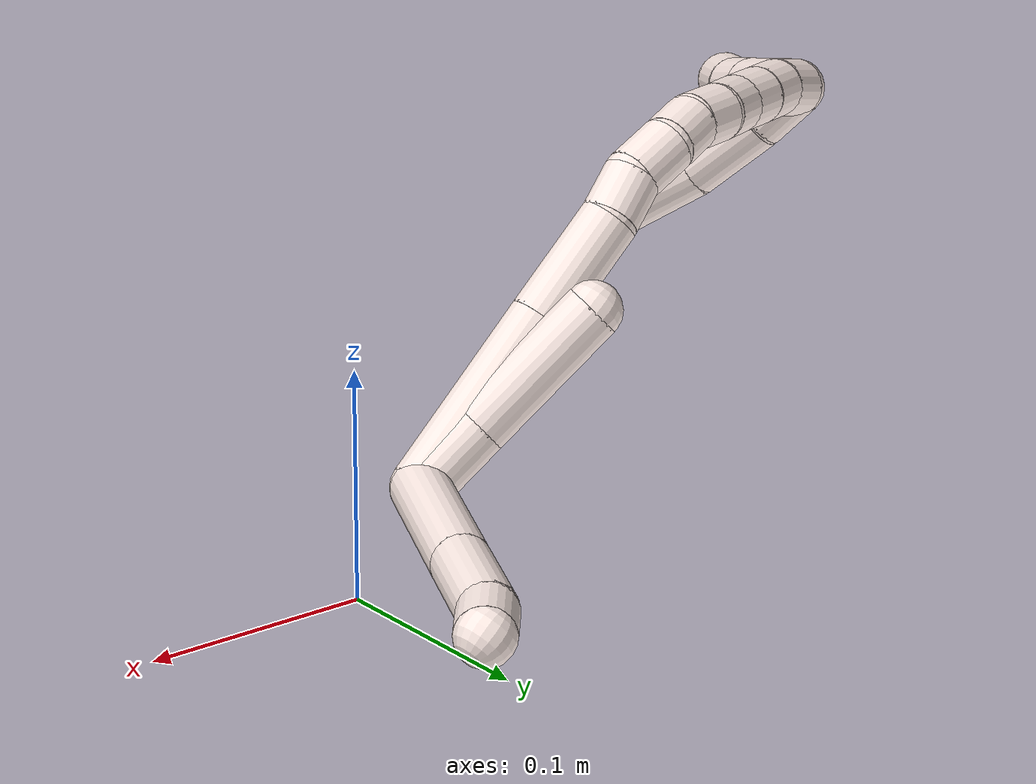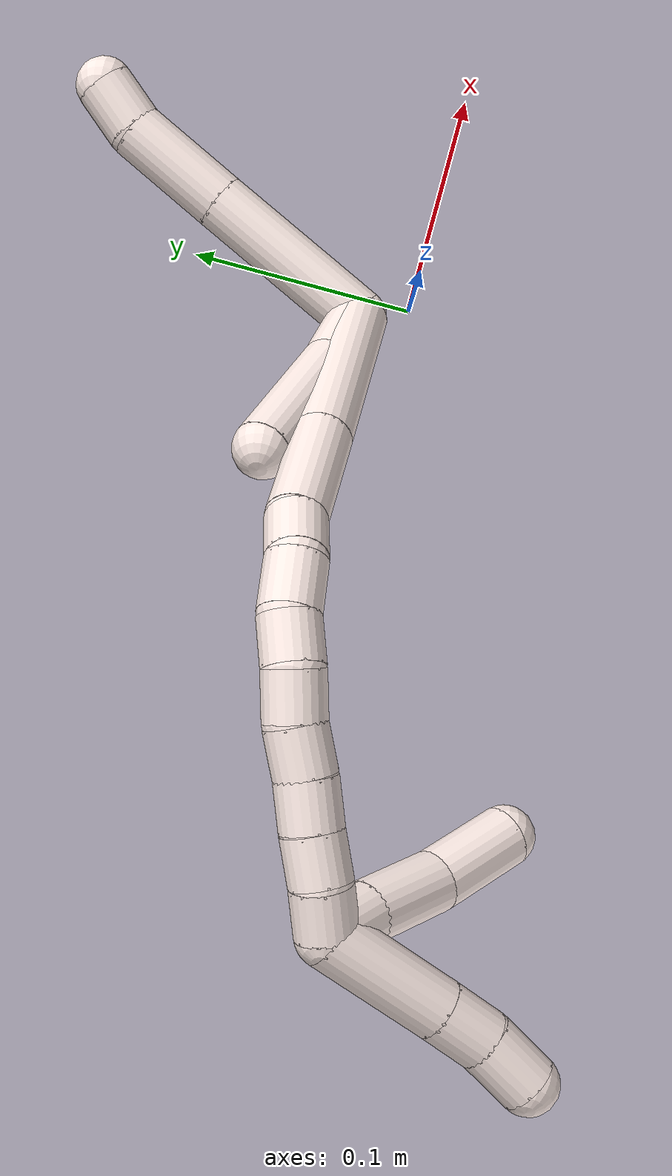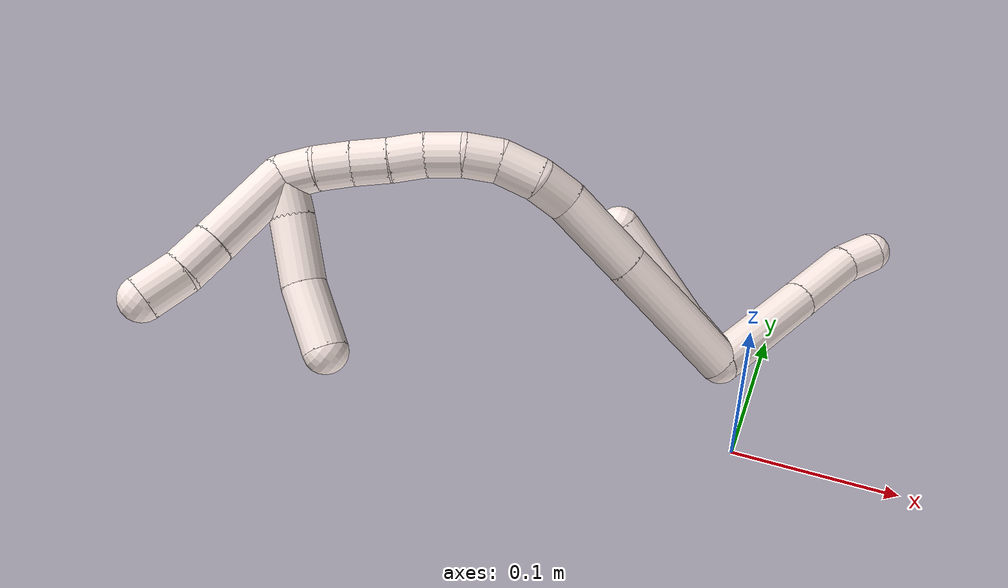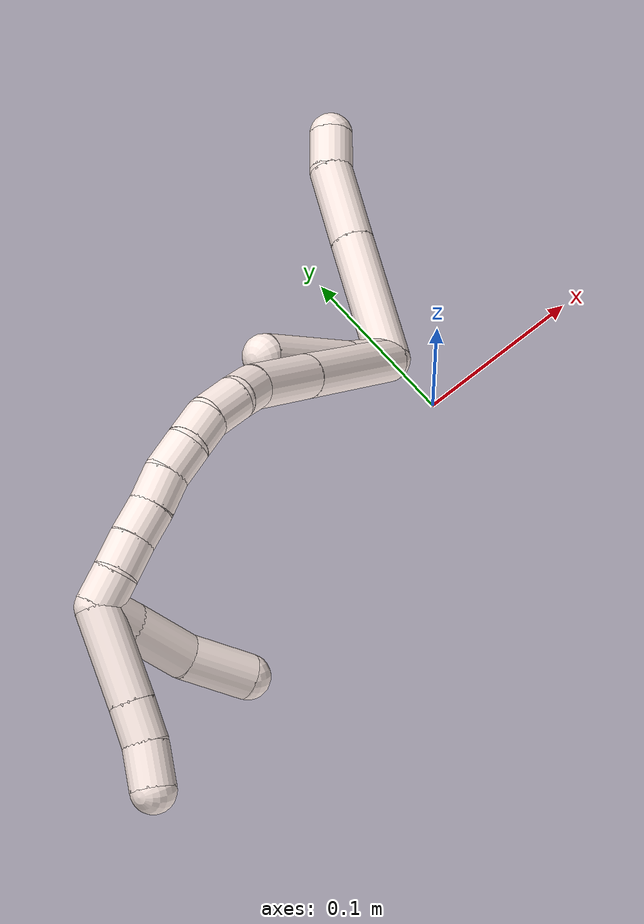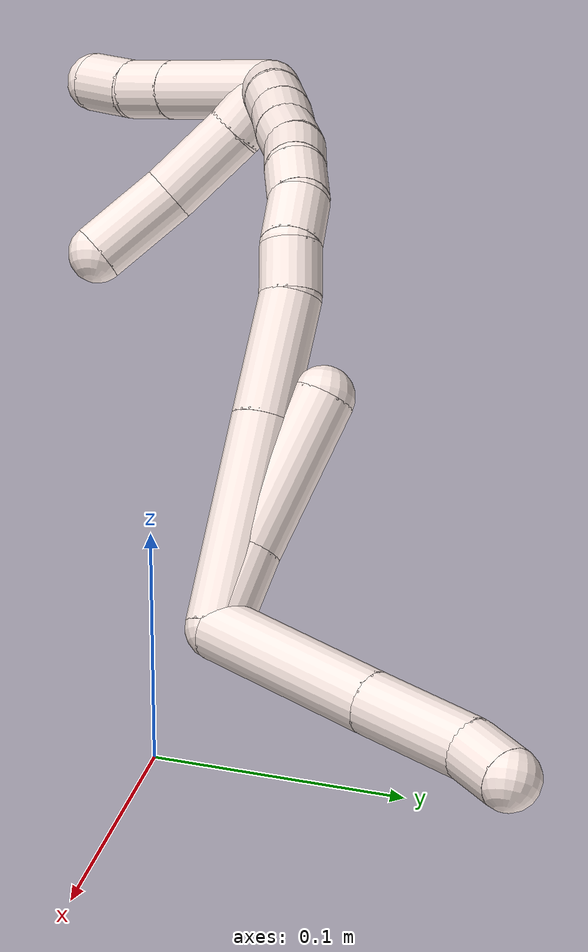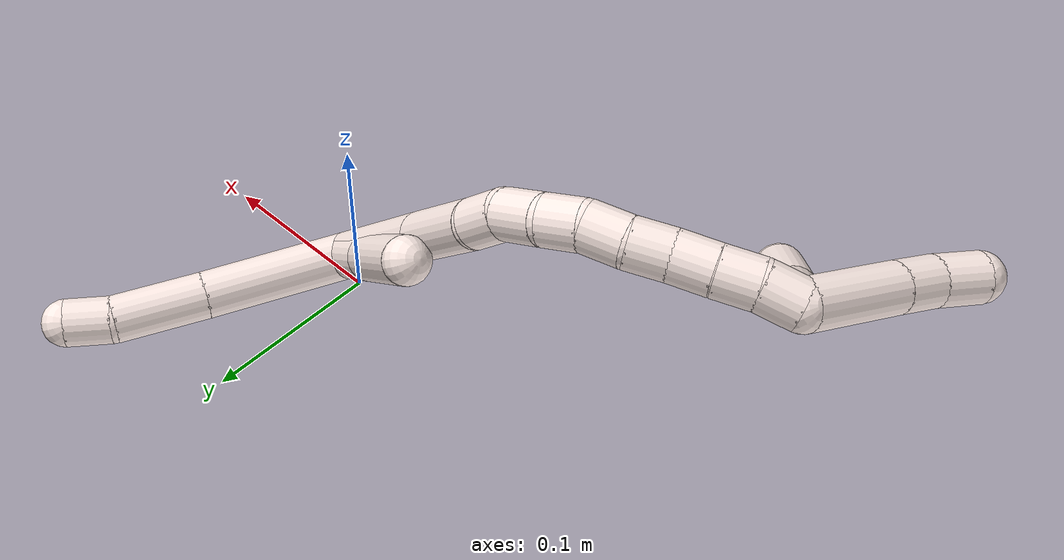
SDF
<sdf version="1.7">
 <world name="default">
  <model name="photoneo_s_sensor">
   <static>1</static>
   <pose>0 0 2 1.57079 1.57079 3.14159</pose>
   <link name="link">
    <inertial><mass>0.1</mass></inertial>
    <sensor name="sensor" type="depth">
     <update_rate>30</update_rate>
     <camera>
      <horizontal_fov>1.22</horizontal_fov>
      <image><width>1920</width><height>1200</height><format>B8G8R8</format></image>
      <clip><near>0.1</near><far>4</far></clip>
      <depth_camera><output>points</output></depth_camera>
     </camera>
     <plugin name="camera_plugin" filename="libgazebo_ros_depth_camera.so">
      <baseline>0.2</baseline>
      <alwaysOn>1</alwaysOn>
      <updateRate>0.0</updateRate>
      <cameraName>camera_ir</cameraName>
      <imageTopicName>/camera/color/image_raw</imageTopicName>
      <cameraInfoTopicName>/camera/color/camera_info</cameraInfoTopicName>
      <depthImageTopicName>/camera/depth/image_raw</depthImageTopicName>
      <depthImageCameraInfoTopicName>/camera/depth/camera_info</depthImageCameraInfoTopicName>
      <pointCloudTopicName>/camera/depth/points</pointCloudTopicName>
      <frameName>fr_optical</frameName>
      <pointCloudCutoff>0.1</pointCloudCutoff>
      <pointCloudCutoffMax>2.0</pointCloudCutoffMax>
      <distortionK1>0</distortionK1>
      <distortionK2>0</distortionK2>
      <distortionK3>0</distortionK3>
      <distortionT1>0</distortionT1>
      <distortionT2>0</distortionT2>
      <CxPrime>0</CxPrime>
      <Cx>0</Cx>
      <Cy>0</Cy>
      <focalLength>0</focalLength>
      <hackBaseline>0</hackBaseline>
     </plugin>
    </sensor>
   </link>
  </model>
  <model name="bin">
   <static>1</static>
   <link name="bottom">
    <collision name="collision-bottom">
     <pose>0 0 -0.01 0 -0 0</pose>
     <geometry><box><size>0.8 0.6 0.02</size></box></geometry>
     <surface>
      <friction><ode><mu>100</mu><mu2>100</mu2></ode></friction>
      <contact><collide_bitmask>65535</collide_bitmask></contact>
     </surface>
    </collision>
   </link>
   <link name="west_wall">
    <collision name="collision-west_wall">
     <pose>-0.41 0 0.1 0 -0 0</pose>
     <geometry><box><size>0.02 0.6 0.2</size></box></geometry>
     <surface>
      <friction><ode><mu>100</mu><mu2>100</mu2></ode></friction>
      <contact><collide_bitmask>65535</collide_bitmask></contact>
     </surface>
    </collision>
   </link>
   <link name="east_wall">
    <collision name="collision-east_wall">
     <pose>0.41 0 0.1 0 -0 0</pose>
     <geometry><box><size>0.02 0.6 0.2</size></box></geometry>
     <surface>
      <friction><ode><mu>100</mu><mu2>100</mu2></ode></friction>
      <contact><collide_bitmask>65535</collide_bitmask></contact>
     </surface>
    </collision>
   </link>
   <link name="south_wall">
    <collision name="collision-south_wall">
     <pose>0 -0.31 0.1 0 -0 0</pose>
     <geometry><box><size>0.8 0.02 0.2</size></box></geometry>
     <surface>
      <friction><ode><mu>100</mu><mu2>100</mu2></ode></friction>
      <contact><collide_bitmask>65535</collide_bitmask></contact>
     </surface>
    </collision>
   </link>
   <link name="north_wall">
    <collision name="collision-north_wall">
     <pose>0 0.31 0.1 0 -0 0</pose>
     <geometry><box><size>0.8 0.02 0.2</size></box></geometry>
     <surface>
      <friction><ode><mu>100</mu><mu2>100</mu2></ode></friction>
      <contact><collide_bitmask>65535</collide_bitmask></contact>
     </surface>
    </collision>
   </link>
  </model>
  <model name="11">
   <static>0</static>
   <link name="11">
    <collision name="collision-cylinder-e_1_2_8">
     <pose>0.022334 0.028121 -0.015086 -2.06319 0.610638 -0.969623</pose>
     <geometry><cylinder><radius>0.0125</radius><length>0.077901</length></cylinder></geometry>
     <surface>
      <friction><ode><mu>1.16</mu><mu2>1.16</mu2><slip1>0</slip1><slip2>0</slip2></ode></friction>
      <contact><ode><kp>1e+06</kp><kd>1</kd><max_vel>0</max_vel><min_depth>0.001</min_depth></ode></contact>
     </surface>
    </collision>
    <visual name="visual-cylinder-e_1_2_8">
     <pose>0.022334 0.028121 -0.015086 -2.06319 0.610638 -0.969623</pose>
     <geometry><cylinder><radius>0.0125</radius><length>0.077901</length></cylinder></geometry>
     <material><ambient>1 0.933333 0.909804 1</ambient></material>
    </visual>
    <collision name="collision-cylinder-e_2_8_9">
     <pose>0.058854 0.073478 -0.039305 -2.05807 0.628783 -0.990753</pose>
     <geometry><cylinder><radius>0.0125</radius><length>0.04824</length></cylinder></geometry>
     <surface>
      <friction><ode><mu>1.16</mu><mu2>1.16</mu2><slip1>0</slip1><slip2>0</slip2></ode></friction>
      <contact><ode><kp>1e+06</kp><kd>1</kd><max_vel>0</max_vel><min_depth>0.001</min_depth></ode></contact>
     </surface>
    </collision>
    <visual name="visual-cylinder-e_2_8_9">
     <pose>0.058854 0.073478 -0.039305 -2.05807 0.628783 -0.990753</pose>
     <geometry><cylinder><radius>0.0125</radius><length>0.04824</length></cylinder></geometry>
     <material><ambient>1 0.933333 0.909804 1</ambient></material>
    </visual>
    <collision name="collision-cylinder-e_3_9_6">
     <pose>0.080961 0.096966 -0.054802 -2.36506 0.726081 -1.49693</pose>
     <geometry><cylinder><radius>0.0125</radius><length>0.023859</length></cylinder></geometry>
     <surface>
      <friction><ode><mu>1.16</mu><mu2>1.16</mu2><slip1>0</slip1><slip2>0</slip2></ode></friction>
      <contact><ode><kp>1e+06</kp><kd>1</kd><max_vel>0</max_vel><min_depth>0.001</min_depth></ode></contact>
     </surface>
    </collision>
    <visual name="visual-cylinder-e_3_9_6">
     <pose>0.080961 0.096966 -0.054802 -2.36506 0.726081 -1.49693</pose>
     <geometry><cylinder><radius>0.0125</radius><length>0.023859</length></cylinder></geometry>
     <material><ambient>1 0.933333 0.909804 1</ambient></material>
    </visual>
    <collision name="collision-cylinder-e_1_2_10">
     <pose>0.001605 0.00327 0.016574 -0.194822 0.094744 -0.009265</pose>
     <geometry><cylinder><radius>0.0125</radius><length>0.033939</length></cylinder></geometry>
     <surface>
      <friction><ode><mu>1.16</mu><mu2>1.16</mu2><slip1>0</slip1><slip2>0</slip2></ode></friction>
      <contact><ode><kp>1e+06</kp><kd>1</kd><max_vel>0</max_vel><min_depth>0.001</min_depth></ode></contact>
     </surface>
    </collision>
    <visual name="visual-cylinder-e_1_2_10">
     <pose>0.001605 0.00327 0.016574 -0.194822 0.094744 -0.009265</pose>
     <geometry><cylinder><radius>0.0125</radius><length>0.033939</length></cylinder></geometry>
     <material><ambient>1 0.933333 0.909804 1</ambient></material>
    </visual>
    <collision name="collision-cylinder-e_2_10_5">
     <pose>0.009523 0.014642 0.064541 -0.252544 0.1923 -0.024486</pose>
     <geometry><cylinder><radius>0.0125</radius><length>0.066061</length></cylinder></geometry>
     <surface>
      <friction><ode><mu>1.16</mu><mu2>1.16</mu2><slip1>0</slip1><slip2>0</slip2></ode></friction>
      <contact><ode><kp>1e+06</kp><kd>1</kd><max_vel>0</max_vel><min_depth>0.001</min_depth></ode></contact>
     </surface>
    </collision>
    <visual name="visual-cylinder-e_2_10_5">
     <pose>0.009523 0.014642 0.064541 -0.252544 0.1923 -0.024486</pose>
     <geometry><cylinder><radius>0.0125</radius><length>0.066061</length></cylinder></geometry>
     <material><ambient>1 0.933333 0.909804 1</ambient></material>
    </visual>
    <collision name="collision-cylinder-e_1_2_11">
     <pose>0.004452 0.000968 0.041895 -0.023101 0.105845 -0.001224</pose>
     <geometry><cylinder><radius>0.0125</radius><length>0.084284</length></cylinder></geometry>
     <surface>
      <friction><ode><mu>1.16</mu><mu2>1.16</mu2><slip1>0</slip1><slip2>0</slip2></ode></friction>
      <contact><ode><kp>1e+06</kp><kd>1</kd><max_vel>0</max_vel><min_depth>0.001</min_depth></ode></contact>
     </surface>
    </collision>
    <visual name="visual-cylinder-e_1_2_11">
     <pose>0.004452 0.000968 0.041895 -0.023101 0.105845 -0.001224</pose>
     <geometry><cylinder><radius>0.0125</radius><length>0.084284</length></cylinder></geometry>
     <material><ambient>1 0.933333 0.909804 1</ambient></material>
    </visual>
    <collision name="collision-cylinder-e_2_11_12">
     <pose>0.011504 0.002657 0.108991 -0.028604 0.102739 -0.001471</pose>
     <geometry><cylinder><radius>0.0125</radius><length>0.05069</length></cylinder></geometry>
     <surface>
      <friction><ode><mu>1.16</mu><mu2>1.16</mu2><slip1>0</slip1><slip2>0</slip2></ode></friction>
      <contact><ode><kp>1e+06</kp><kd>1</kd><max_vel>0</max_vel><min_depth>0.001</min_depth></ode></contact>
     </surface>
    </collision>
    <visual name="visual-cylinder-e_2_11_12">
     <pose>0.011504 0.002657 0.108991 -0.028604 0.102739 -0.001471</pose>
     <geometry><cylinder><radius>0.0125</radius><length>0.05069</length></cylinder></geometry>
     <material><ambient>1 0.933333 0.909804 1</ambient></material>
    </visual>
    <collision name="collision-cylinder-e_3_12_13">
     <pose>0.014041 0.001672 0.144744 0.16026 -0.005791 -0.000465</pose>
     <geometry><cylinder><radius>0.0125</radius><length>0.021379</length></cylinder></geometry>
     <surface>
      <friction><ode><mu>1.16</mu><mu2>1.16</mu2><slip1>0</slip1><slip2>0</slip2></ode></friction>
      <contact><ode><kp>1e+06</kp><kd>1</kd><max_vel>0</max_vel><min_depth>0.001</min_depth></ode></contact>
     </surface>
    </collision>
    <visual name="visual-cylinder-e_3_12_13">
     <pose>0.014041 0.001672 0.144744 0.16026 -0.005791 -0.000465</pose>
     <geometry><cylinder><radius>0.0125</radius><length>0.021379</length></cylinder></geometry>
     <material><ambient>1 0.933333 0.909804 1</ambient></material>
    </visual>
    <collision name="collision-cylinder-e_4_13_14">
     <pose>0.010747 0.000399 0.166393 -0.03891 -0.28325 0.005548</pose>
     <geometry><cylinder><radius>0.0125</radius><length>0.02313</length></cylinder></geometry>
     <surface>
      <friction><ode><mu>1.16</mu><mu2>1.16</mu2><slip1>0</slip1><slip2>0</slip2></ode></friction>
      <contact><ode><kp>1e+06</kp><kd>1</kd><max_vel>0</max_vel><min_depth>0.001</min_depth></ode></contact>
     </surface>
    </collision>
    <visual name="visual-cylinder-e_4_13_14">
     <pose>0.010747 0.000399 0.166393 -0.03891 -0.28325 0.005548</pose>
     <geometry><cylinder><radius>0.0125</radius><length>0.02313</length></cylinder></geometry>
     <material><ambient>1 0.933333 0.909804 1</ambient></material>
    </visual>
    <collision name="collision-cylinder-e_5_14_15">
     <pose>0.002607 -0.000319 0.186152 0.131861 -0.511683 -0.034538</pose>
     <geometry><cylinder><radius>0.0125</radius><length>0.020045</length></cylinder></geometry>
     <surface>
      <friction><ode><mu>1.16</mu><mu2>1.16</mu2><slip1>0</slip1><slip2>0</slip2></ode></friction>
      <contact><ode><kp>1e+06</kp><kd>1</kd><max_vel>0</max_vel><min_depth>0.001</min_depth></ode></contact>
     </surface>
    </collision>
    <visual name="visual-cylinder-e_5_14_15">
     <pose>0.002607 -0.000319 0.186152 0.131861 -0.511683 -0.034538</pose>
     <geometry><cylinder><radius>0.0125</radius><length>0.020045</length></cylinder></geometry>
     <material><ambient>1 0.933333 0.909804 1</ambient></material>
    </visual>
    <collision name="collision-cylinder-e_6_15_16">
     <pose>-0.009206 -0.001357 0.2023 -0.01482 -0.745106 0.005792</pose>
     <geometry><cylinder><radius>0.0125</radius><length>0.020369</length></cylinder></geometry>
     <surface>
      <friction><ode><mu>1.16</mu><mu2>1.16</mu2><slip1>0</slip1><slip2>0</slip2></ode></friction>
      <contact><ode><kp>1e+06</kp><kd>1</kd><max_vel>0</max_vel><min_depth>0.001</min_depth></ode></contact>
     </surface>
    </collision>
    <visual name="visual-cylinder-e_6_15_16">
     <pose>-0.009206 -0.001357 0.2023 -0.01482 -0.745106 0.005792</pose>
     <geometry><cylinder><radius>0.0125</radius><length>0.020369</length></cylinder></geometry>
     <material><ambient>1 0.933333 0.909804 1</ambient></material>
    </visual>
    <collision name="collision-cylinder-e_7_16_17">
     <pose>-0.023575 -0.002649 0.216326 0.21136 -0.839989 -0.094668</pose>
     <geometry><cylinder><radius>0.0125</radius><length>0.020047</length></cylinder></geometry>
     <surface>
      <friction><ode><mu>1.16</mu><mu2>1.16</mu2><slip1>0</slip1><slip2>0</slip2></ode></friction>
      <contact><ode><kp>1e+06</kp><kd>1</kd><max_vel>0</max_vel><min_depth>0.001</min_depth></ode></contact>
     </surface>
    </collision>
    <visual name="visual-cylinder-e_7_16_17">
     <pose>-0.023575 -0.002649 0.216326 0.21136 -0.839989 -0.094668</pose>
     <geometry><cylinder><radius>0.0125</radius><length>0.020047</length></cylinder></geometry>
     <material><ambient>1 0.933333 0.909804 1</ambient></material>
    </visual>
    <collision name="collision-cylinder-e_8_17_18">
     <pose>-0.038255 -0.004691 0.22979 0.092005 -0.80404 -0.039141</pose>
     <geometry><cylinder><radius>0.0125</radius><length>0.02004</length></cylinder></geometry>
     <surface>
      <friction><ode><mu>1.16</mu><mu2>1.16</mu2><slip1>0</slip1><slip2>0</slip2></ode></friction>
      <contact><ode><kp>1e+06</kp><kd>1</kd><max_vel>0</max_vel><min_depth>0.001</min_depth></ode></contact>
     </surface>
    </collision>
    <visual name="visual-cylinder-e_8_17_18">
     <pose>-0.038255 -0.004691 0.22979 0.092005 -0.80404 -0.039141</pose>
     <geometry><cylinder><radius>0.0125</radius><length>0.02004</length></cylinder></geometry>
     <material><ambient>1 0.933333 0.909804 1</ambient></material>
    </visual>
    <collision name="collision-cylinder-e_9_18_19">
     <pose>-0.052906 -0.006453 0.243313 0.168565 -0.837707 -0.075188</pose>
     <geometry><cylinder><radius>0.0125</radius><length>0.02001</length></cylinder></geometry>
     <surface>
      <friction><ode><mu>1.16</mu><mu2>1.16</mu2><slip1>0</slip1><slip2>0</slip2></ode></friction>
      <contact><ode><kp>1e+06</kp><kd>1</kd><max_vel>0</max_vel><min_depth>0.001</min_depth></ode></contact>
     </surface>
    </collision>
    <visual name="visual-cylinder-e_9_18_19">
     <pose>-0.052906 -0.006453 0.243313 0.168565 -0.837707 -0.075188</pose>
     <geometry><cylinder><radius>0.0125</radius><length>0.02001</length></cylinder></geometry>
     <material><ambient>1 0.933333 0.909804 1</ambient></material>
    </visual>
    <collision name="collision-cylinder-e_10_19_1">
     <pose>-0.068652 -0.007699 0.255477 0.021911 -0.980707 -0.011697</pose>
     <geometry><cylinder><radius>0.0125</radius><length>0.020005</length></cylinder></geometry>
     <surface>
      <friction><ode><mu>1.16</mu><mu2>1.16</mu2><slip1>0</slip1><slip2>0</slip2></ode></friction>
      <contact><ode><kp>1e+06</kp><kd>1</kd><max_vel>0</max_vel><min_depth>0.001</min_depth></ode></contact>
     </surface>
    </collision>
    <visual name="visual-cylinder-e_10_19_1">
     <pose>-0.068652 -0.007699 0.255477 0.021911 -0.980707 -0.011697</pose>
     <geometry><cylinder><radius>0.0125</radius><length>0.020005</length></cylinder></geometry>
     <material><ambient>1 0.933333 0.909804 1</ambient></material>
    </visual>
    <collision name="collision-cylinder-e_1_1_20">
     <pose>-0.096016 -0.025872 0.264543 1.37923 -0.803165 -0.673725</pose>
     <geometry><cylinder><radius>0.0125</radius><length>0.052957</length></cylinder></geometry>
     <surface>
      <friction><ode><mu>1.16</mu><mu2>1.16</mu2><slip1>0</slip1><slip2>0</slip2></ode></friction>
      <contact><ode><kp>1e+06</kp><kd>1</kd><max_vel>0</max_vel><min_depth>0.001</min_depth></ode></contact>
     </surface>
    </collision>
    <visual name="visual-cylinder-e_1_1_20">
     <pose>-0.096016 -0.025872 0.264543 1.37923 -0.803165 -0.673725</pose>
     <geometry><cylinder><radius>0.0125</radius><length>0.052957</length></cylinder></geometry>
     <material><ambient>1 0.933333 0.909804 1</ambient></material>
    </visual>
    <collision name="collision-cylinder-e_2_20_21">
     <pose>-0.12318 -0.051418 0.26967 1.35713 -0.813372 -0.668478</pose>
     <geometry><cylinder><radius>0.0125</radius><length>0.022327</length></cylinder></geometry>
     <surface>
      <friction><ode><mu>1.16</mu><mu2>1.16</mu2><slip1>0</slip1><slip2>0</slip2></ode></friction>
      <contact><ode><kp>1e+06</kp><kd>1</kd><max_vel>0</max_vel><min_depth>0.001</min_depth></ode></contact>
     </surface>
    </collision>
    <visual name="visual-cylinder-e_2_20_21">
     <pose>-0.12318 -0.051418 0.26967 1.35713 -0.813372 -0.668478</pose>
     <geometry><cylinder><radius>0.0125</radius><length>0.022327</length></cylinder></geometry>
     <material><ambient>1 0.933333 0.909804 1</ambient></material>
    </visual>
    <collision name="collision-cylinder-e_3_21_4">
     <pose>-0.140466 -0.066306 0.275025 1.10361 -0.836658 -0.534263</pose>
     <geometry><cylinder><radius>0.0125</radius><length>0.024716</length></cylinder></geometry>
     <surface>
      <friction><ode><mu>1.16</mu><mu2>1.16</mu2><slip1>0</slip1><slip2>0</slip2></ode></friction>
      <contact><ode><kp>1e+06</kp><kd>1</kd><max_vel>0</max_vel><min_depth>0.001</min_depth></ode></contact>
     </surface>
    </collision>
    <visual name="visual-cylinder-e_3_21_4">
     <pose>-0.140466 -0.066306 0.275025 1.10361 -0.836658 -0.534263</pose>
     <geometry><cylinder><radius>0.0125</radius><length>0.024716</length></cylinder></geometry>
     <material><ambient>1 0.933333 0.909804 1</ambient></material>
    </visual>
    <collision name="collision-cylinder-e_1_1_22">
     <pose>-0.082472 -0.012927 0.252321 2.61187 -0.499101 -1.50858</pose>
     <geometry><cylinder><radius>0.0125</radius><length>0.02302</length></cylinder></geometry>
     <surface>
      <friction><ode><mu>1.16</mu><mu2>1.16</mu2><slip1>0</slip1><slip2>0</slip2></ode></friction>
      <contact><ode><kp>1e+06</kp><kd>1</kd><max_vel>0</max_vel><min_depth>0.001</min_depth></ode></contact>
     </surface>
    </collision>
    <visual name="visual-cylinder-e_1_1_22">
     <pose>-0.082472 -0.012927 0.252321 2.61187 -0.499101 -1.50858</pose>
     <geometry><cylinder><radius>0.0125</radius><length>0.02302</length></cylinder></geometry>
     <material><ambient>1 0.933333 0.909804 1</ambient></material>
    </visual>
    <collision name="collision-cylinder-e_2_22_23">
     <pose>-0.09699 -0.02812 0.230223 2.49555 -0.493372 -1.28989</pose>
     <geometry><cylinder><radius>0.0125</radius><length>0.038045</length></cylinder></geometry>
     <surface>
      <friction><ode><mu>1.16</mu><mu2>1.16</mu2><slip1>0</slip1><slip2>0</slip2></ode></friction>
      <contact><ode><kp>1e+06</kp><kd>1</kd><max_vel>0</max_vel><min_depth>0.001</min_depth></ode></contact>
     </surface>
    </collision>
    <visual name="visual-cylinder-e_2_22_23">
     <pose>-0.09699 -0.02812 0.230223 2.49555 -0.493372 -1.28989</pose>
     <geometry><cylinder><radius>0.0125</radius><length>0.038045</length></cylinder></geometry>
     <material><ambient>1 0.933333 0.909804 1</ambient></material>
    </visual>
    <collision name="collision-cylinder-e_3_23_3">
     <pose>-0.111433 -0.049982 0.202327 2.46013 -0.282893 -0.763797</pose>
     <geometry><cylinder><radius>0.0125</radius><length>0.038936</length></cylinder></geometry>
     <surface>
      <friction><ode><mu>1.16</mu><mu2>1.16</mu2><slip1>0</slip1><slip2>0</slip2></ode></friction>
      <contact><ode><kp>1e+06</kp><kd>1</kd><max_vel>0</max_vel><min_depth>0.001</min_depth></ode></contact>
     </surface>
    </collision>
    <visual name="visual-cylinder-e_3_23_3">
     <pose>-0.111433 -0.049982 0.202327 2.46013 -0.282893 -0.763797</pose>
     <geometry><cylinder><radius>0.0125</radius><length>0.038936</length></cylinder></geometry>
     <material><ambient>1 0.933333 0.909804 1</ambient></material>
    </visual>
    <collision name="collision-sphere-3">
     <pose>-0.116867 -0.061758 0.187808 0 -0 0</pose>
     <geometry><sphere><radius>0.0125</radius></sphere></geometry>
     <surface>
      <friction><ode><mu>1.16</mu><mu2>1.16</mu2><slip1>0</slip1><slip2>0</slip2></ode></friction>
      <contact><ode><kp>1e+06</kp><kd>1</kd><max_vel>0</max_vel><min_depth>0.001</min_depth></ode></contact>
     </surface>
    </collision>
    <visual name="visual-sphere-3">
     <pose>-0.116867 -0.061758 0.187808 0 -0 0</pose>
     <geometry><sphere><radius>0.0125</radius></sphere></geometry>
     <material><ambient>1 0.933333 0.909804 1</ambient></material>
    </visual>
    <collision name="collision-sphere-23">
     <pose>-0.105999 -0.038206 0.216846 0 -0 0</pose>
     <geometry><sphere><radius>0.0125</radius></sphere></geometry>
     <surface>
      <friction><ode><mu>1.16</mu><mu2>1.16</mu2><slip1>0</slip1><slip2>0</slip2></ode></friction>
      <contact><ode><kp>1e+06</kp><kd>1</kd><max_vel>0</max_vel><min_depth>0.001</min_depth></ode></contact>
     </surface>
    </collision>
    <visual name="visual-sphere-23">
     <pose>-0.105999 -0.038206 0.216846 0 -0 0</pose>
     <geometry><sphere><radius>0.0125</radius></sphere></geometry>
     <material><ambient>1 0.933333 0.909804 1</ambient></material>
    </visual>
    <collision name="collision-sphere-22">
     <pose>-0.087981 -0.018033 0.2436 0 -0 0</pose>
     <geometry><sphere><radius>0.0125</radius></sphere></geometry>
     <surface>
      <friction><ode><mu>1.16</mu><mu2>1.16</mu2><slip1>0</slip1><slip2>0</slip2></ode></friction>
      <contact><ode><kp>1e+06</kp><kd>1</kd><max_vel>0</max_vel><min_depth>0.001</min_depth></ode></contact>
     </surface>
    </collision>
    <visual name="visual-sphere-22">
     <pose>-0.087981 -0.018033 0.2436 0 -0 0</pose>
     <geometry><sphere><radius>0.0125</radius></sphere></geometry>
     <material><ambient>1 0.933333 0.909804 1</ambient></material>
    </visual>
    <collision name="collision-sphere-4">
     <pose>-0.149641 -0.073698 0.278754 0 -0 0</pose>
     <geometry><sphere><radius>0.0125</radius></sphere></geometry>
     <surface>
      <friction><ode><mu>1.16</mu><mu2>1.16</mu2><slip1>0</slip1><slip2>0</slip2></ode></friction>
      <contact><ode><kp>1e+06</kp><kd>1</kd><max_vel>0</max_vel><min_depth>0.001</min_depth></ode></contact>
     </surface>
    </collision>
    <visual name="visual-sphere-4">
     <pose>-0.149641 -0.073698 0.278754 0 -0 0</pose>
     <geometry><sphere><radius>0.0125</radius></sphere></geometry>
     <material><ambient>1 0.933333 0.909804 1</ambient></material>
    </visual>
    <collision name="collision-sphere-21">
     <pose>-0.131291 -0.058914 0.271297 0 -0 0</pose>
     <geometry><sphere><radius>0.0125</radius></sphere></geometry>
     <surface>
      <friction><ode><mu>1.16</mu><mu2>1.16</mu2><slip1>0</slip1><slip2>0</slip2></ode></friction>
      <contact><ode><kp>1e+06</kp><kd>1</kd><max_vel>0</max_vel><min_depth>0.001</min_depth></ode></contact>
     </surface>
    </collision>
    <visual name="visual-sphere-21">
     <pose>-0.131291 -0.058914 0.271297 0 -0 0</pose>
     <geometry><sphere><radius>0.0125</radius></sphere></geometry>
     <material><ambient>1 0.933333 0.909804 1</ambient></material>
    </visual>
    <collision name="collision-sphere-20">
     <pose>-0.115068 -0.043923 0.268044 0 -0 0</pose>
     <geometry><sphere><radius>0.0125</radius></sphere></geometry>
     <surface>
      <friction><ode><mu>1.16</mu><mu2>1.16</mu2><slip1>0</slip1><slip2>0</slip2></ode></friction>
      <contact><ode><kp>1e+06</kp><kd>1</kd><max_vel>0</max_vel><min_depth>0.001</min_depth></ode></contact>
     </surface>
    </collision>
    <visual name="visual-sphere-20">
     <pose>-0.115068 -0.043923 0.268044 0 -0 0</pose>
     <geometry><sphere><radius>0.0125</radius></sphere></geometry>
     <material><ambient>1 0.933333 0.909804 1</ambient></material>
    </visual>
    <collision name="collision-sphere-5">
     <pose>0.015836 0.022743 0.095934 0 -0 0</pose>
     <geometry><sphere><radius>0.0125</radius></sphere></geometry>
     <surface>
      <friction><ode><mu>1.16</mu><mu2>1.16</mu2><slip1>0</slip1><slip2>0</slip2></ode></friction>
      <contact><ode><kp>1e+06</kp><kd>1</kd><max_vel>0</max_vel><min_depth>0.001</min_depth></ode></contact>
     </surface>
    </collision>
    <visual name="visual-sphere-5">
     <pose>0.015836 0.022743 0.095934 0 -0 0</pose>
     <geometry><sphere><radius>0.0125</radius></sphere></geometry>
     <material><ambient>1 0.933333 0.909804 1</ambient></material>
    </visual>
    <collision name="collision-sphere-10">
     <pose>0.003211 0.006541 0.033147 0 -0 0</pose>
     <geometry><sphere><radius>0.0125</radius></sphere></geometry>
     <surface>
      <friction><ode><mu>1.16</mu><mu2>1.16</mu2><slip1>0</slip1><slip2>0</slip2></ode></friction>
      <contact><ode><kp>1e+06</kp><kd>1</kd><max_vel>0</max_vel><min_depth>0.001</min_depth></ode></contact>
     </surface>
    </collision>
    <visual name="visual-sphere-10">
     <pose>0.003211 0.006541 0.033147 0 -0 0</pose>
     <geometry><sphere><radius>0.0125</radius></sphere></geometry>
     <material><ambient>1 0.933333 0.909804 1</ambient></material>
    </visual>
    <collision name="collision-sphere-6">
     <pose>0.088882 0.103218 -0.061165 0 -0 0</pose>
     <geometry><sphere><radius>0.0125</radius></sphere></geometry>
     <surface>
      <friction><ode><mu>1.16</mu><mu2>1.16</mu2><slip1>0</slip1><slip2>0</slip2></ode></friction>
      <contact><ode><kp>1e+06</kp><kd>1</kd><max_vel>0</max_vel><min_depth>0.001</min_depth></ode></contact>
     </surface>
    </collision>
    <visual name="visual-sphere-6">
     <pose>0.088882 0.103218 -0.061165 0 -0 0</pose>
     <geometry><sphere><radius>0.0125</radius></sphere></geometry>
     <material><ambient>1 0.933333 0.909804 1</ambient></material>
    </visual>
    <collision name="collision-sphere-9">
     <pose>0.073041 0.090714 -0.048438 0 -0 0</pose>
     <geometry><sphere><radius>0.0125</radius></sphere></geometry>
     <surface>
      <friction><ode><mu>1.16</mu><mu2>1.16</mu2><slip1>0</slip1><slip2>0</slip2></ode></friction>
      <contact><ode><kp>1e+06</kp><kd>1</kd><max_vel>0</max_vel><min_depth>0.001</min_depth></ode></contact>
     </surface>
    </collision>
    <visual name="visual-sphere-9">
     <pose>0.073041 0.090714 -0.048438 0 -0 0</pose>
     <geometry><sphere><radius>0.0125</radius></sphere></geometry>
     <material><ambient>1 0.933333 0.909804 1</ambient></material>
    </visual>
    <collision name="collision-sphere-2">
     <geometry><sphere><radius>0.0125</radius></sphere></geometry>
     <surface>
      <friction><ode><mu>1.16</mu><mu2>1.16</mu2><slip1>0</slip1><slip2>0</slip2></ode></friction>
      <contact><ode><kp>1e+06</kp><kd>1</kd><max_vel>0</max_vel><min_depth>0.001</min_depth></ode></contact>
     </surface>
    </collision>
    <visual name="visual-sphere-2">
     <geometry><sphere><radius>0.0125</radius></sphere></geometry>
     <material><ambient>1 0.933333 0.909804 1</ambient></material>
    </visual>
    <collision name="collision-sphere-19">
     <pose>-0.060341 -0.007577 0.249913 0 -0 0</pose>
     <geometry><sphere><radius>0.0125</radius></sphere></geometry>
     <surface>
      <friction><ode><mu>1.16</mu><mu2>1.16</mu2><slip1>0</slip1><slip2>0</slip2></ode></friction>
      <contact><ode><kp>1e+06</kp><kd>1</kd><max_vel>0</max_vel><min_depth>0.001</min_depth></ode></contact>
     </surface>
    </collision>
    <visual name="visual-sphere-19">
     <pose>-0.060341 -0.007577 0.249913 0 -0 0</pose>
     <geometry><sphere><radius>0.0125</radius></sphere></geometry>
     <material><ambient>1 0.933333 0.909804 1</ambient></material>
    </visual>
    <collision name="collision-sphere-8">
     <pose>0.044668 0.056241 -0.030171 0 -0 0</pose>
     <geometry><sphere><radius>0.0125</radius></sphere></geometry>
     <surface>
      <friction><ode><mu>1.16</mu><mu2>1.16</mu2><slip1>0</slip1><slip2>0</slip2></ode></friction>
      <contact><ode><kp>1e+06</kp><kd>1</kd><max_vel>0</max_vel><min_depth>0.001</min_depth></ode></contact>
     </surface>
    </collision>
    <visual name="visual-sphere-8">
     <pose>0.044668 0.056241 -0.030171 0 -0 0</pose>
     <geometry><sphere><radius>0.0125</radius></sphere></geometry>
     <material><ambient>1 0.933333 0.909804 1</ambient></material>
    </visual>
    <collision name="collision-sphere-11">
     <pose>0.008904 0.001936 0.08379 0 -0 0</pose>
     <geometry><sphere><radius>0.0125</radius></sphere></geometry>
     <surface>
      <friction><ode><mu>1.16</mu><mu2>1.16</mu2><slip1>0</slip1><slip2>0</slip2></ode></friction>
      <contact><ode><kp>1e+06</kp><kd>1</kd><max_vel>0</max_vel><min_depth>0.001</min_depth></ode></contact>
     </surface>
    </collision>
    <visual name="visual-sphere-11">
     <pose>0.008904 0.001936 0.08379 0 -0 0</pose>
     <geometry><sphere><radius>0.0125</radius></sphere></geometry>
     <material><ambient>1 0.933333 0.909804 1</ambient></material>
    </visual>
    <collision name="collision-sphere-12">
     <pose>0.014103 0.003378 0.134192 0 -0 0</pose>
     <geometry><sphere><radius>0.0125</radius></sphere></geometry>
     <surface>
      <friction><ode><mu>1.16</mu><mu2>1.16</mu2><slip1>0</slip1><slip2>0</slip2></ode></friction>
      <contact><ode><kp>1e+06</kp><kd>1</kd><max_vel>0</max_vel><min_depth>0.001</min_depth></ode></contact>
     </surface>
    </collision>
    <visual name="visual-sphere-12">
     <pose>0.014103 0.003378 0.134192 0 -0 0</pose>
     <geometry><sphere><radius>0.0125</radius></sphere></geometry>
     <material><ambient>1 0.933333 0.909804 1</ambient></material>
    </visual>
    <collision name="collision-sphere-13">
     <pose>0.013979 -3.3e-05 0.155297 0 -0 0</pose>
     <geometry><sphere><radius>0.0125</radius></sphere></geometry>
     <surface>
      <friction><ode><mu>1.16</mu><mu2>1.16</mu2><slip1>0</slip1><slip2>0</slip2></ode></friction>
      <contact><ode><kp>1e+06</kp><kd>1</kd><max_vel>0</max_vel><min_depth>0.001</min_depth></ode></contact>
     </surface>
    </collision>
    <visual name="visual-sphere-13">
     <pose>0.013979 -3.3e-05 0.155297 0 -0 0</pose>
     <geometry><sphere><radius>0.0125</radius></sphere></geometry>
     <material><ambient>1 0.933333 0.909804 1</ambient></material>
    </visual>
    <collision name="collision-sphere-14">
     <pose>0.007515 0.00083 0.177489 0 -0 0</pose>
     <geometry><sphere><radius>0.0125</radius></sphere></geometry>
     <surface>
      <friction><ode><mu>1.16</mu><mu2>1.16</mu2><slip1>0</slip1><slip2>0</slip2></ode></friction>
      <contact><ode><kp>1e+06</kp><kd>1</kd><max_vel>0</max_vel><min_depth>0.001</min_depth></ode></contact>
     </surface>
    </collision>
    <visual name="visual-sphere-14">
     <pose>0.007515 0.00083 0.177489 0 -0 0</pose>
     <geometry><sphere><radius>0.0125</radius></sphere></geometry>
     <material><ambient>1 0.933333 0.909804 1</ambient></material>
    </visual>
    <collision name="collision-sphere-15">
     <pose>-0.0023 -0.001468 0.194815 0 -0 0</pose>
     <geometry><sphere><radius>0.0125</radius></sphere></geometry>
     <surface>
      <friction><ode><mu>1.16</mu><mu2>1.16</mu2><slip1>0</slip1><slip2>0</slip2></ode></friction>
      <contact><ode><kp>1e+06</kp><kd>1</kd><max_vel>0</max_vel><min_depth>0.001</min_depth></ode></contact>
     </surface>
    </collision>
    <visual name="visual-sphere-15">
     <pose>-0.0023 -0.001468 0.194815 0 -0 0</pose>
     <geometry><sphere><radius>0.0125</radius></sphere></geometry>
     <material><ambient>1 0.933333 0.909804 1</ambient></material>
    </visual>
    <collision name="collision-sphere-16">
     <pose>-0.016111 -0.001246 0.209785 0 -0 0</pose>
     <geometry><sphere><radius>0.0125</radius></sphere></geometry>
     <surface>
      <friction><ode><mu>1.16</mu><mu2>1.16</mu2><slip1>0</slip1><slip2>0</slip2></ode></friction>
      <contact><ode><kp>1e+06</kp><kd>1</kd><max_vel>0</max_vel><min_depth>0.001</min_depth></ode></contact>
     </surface>
    </collision>
    <visual name="visual-sphere-16">
     <pose>-0.016111 -0.001246 0.209785 0 -0 0</pose>
     <geometry><sphere><radius>0.0125</radius></sphere></geometry>
     <material><ambient>1 0.933333 0.909804 1</ambient></material>
    </visual>
    <collision name="collision-sphere-17">
     <pose>-0.031039 -0.004053 0.222867 0 -0 0</pose>
     <geometry><sphere><radius>0.0125</radius></sphere></geometry>
     <surface>
      <friction><ode><mu>1.16</mu><mu2>1.16</mu2><slip1>0</slip1><slip2>0</slip2></ode></friction>
      <contact><ode><kp>1e+06</kp><kd>1</kd><max_vel>0</max_vel><min_depth>0.001</min_depth></ode></contact>
     </surface>
    </collision>
    <visual name="visual-sphere-17">
     <pose>-0.031039 -0.004053 0.222867 0 -0 0</pose>
     <geometry><sphere><radius>0.0125</radius></sphere></geometry>
     <material><ambient>1 0.933333 0.909804 1</ambient></material>
    </visual>
    <collision name="collision-sphere-18">
     <pose>-0.045471 -0.00533 0.236712 0 -0 0</pose>
     <geometry><sphere><radius>0.0125</radius></sphere></geometry>
     <surface>
      <friction><ode><mu>1.16</mu><mu2>1.16</mu2><slip1>0</slip1><slip2>0</slip2></ode></friction>
      <contact><ode><kp>1e+06</kp><kd>1</kd><max_vel>0</max_vel><min_depth>0.001</min_depth></ode></contact>
     </surface>
    </collision>
    <visual name="visual-sphere-18">
     <pose>-0.045471 -0.00533 0.236712 0 -0 0</pose>
     <geometry><sphere><radius>0.0125</radius></sphere></geometry>
     <material><ambient>1 0.933333 0.909804 1</ambient></material>
    </visual>
    <collision name="collision-sphere-1">
     <pose>-0.076963 -0.007821 0.261042 0 -0 0</pose>
     <geometry><sphere><radius>0.0125</radius></sphere></geometry>
     <surface>
      <friction><ode><mu>1.16</mu><mu2>1.16</mu2><slip1>0</slip1><slip2>0</slip2></ode></friction>
      <contact><ode><kp>1e+06</kp><kd>1</kd><max_vel>0</max_vel><min_depth>0.001</min_depth></ode></contact>
     </surface>
    </collision>
    <visual name="visual-sphere-1">
     <pose>-0.076963 -0.007821 0.261042 0 -0 0</pose>
     <geometry><sphere><radius>0.0125</radius></sphere></geometry>
     <material><ambient>1 0.933333 0.909804 1</ambient></material>
    </visual>
    <inertial>
     <pose>-0.021785 0.001938 0.123323 0 -0 0</pose>
     <mass>0.75</mass>
     <inertia><ixx>8.3e-05</ixx><ixy>0</ixy><ixz>0</ixz><iyy>6.9e-05</iyy><iyz>0</iyz><izz>-2.8e-05</izz></inertia>
    </inertial>
   </link>
   <pose>-0.017272 0.020309 0.051906 -0.390909 -0.821141 0.587231</pose>
  </model>
 </world>
</sdf>
